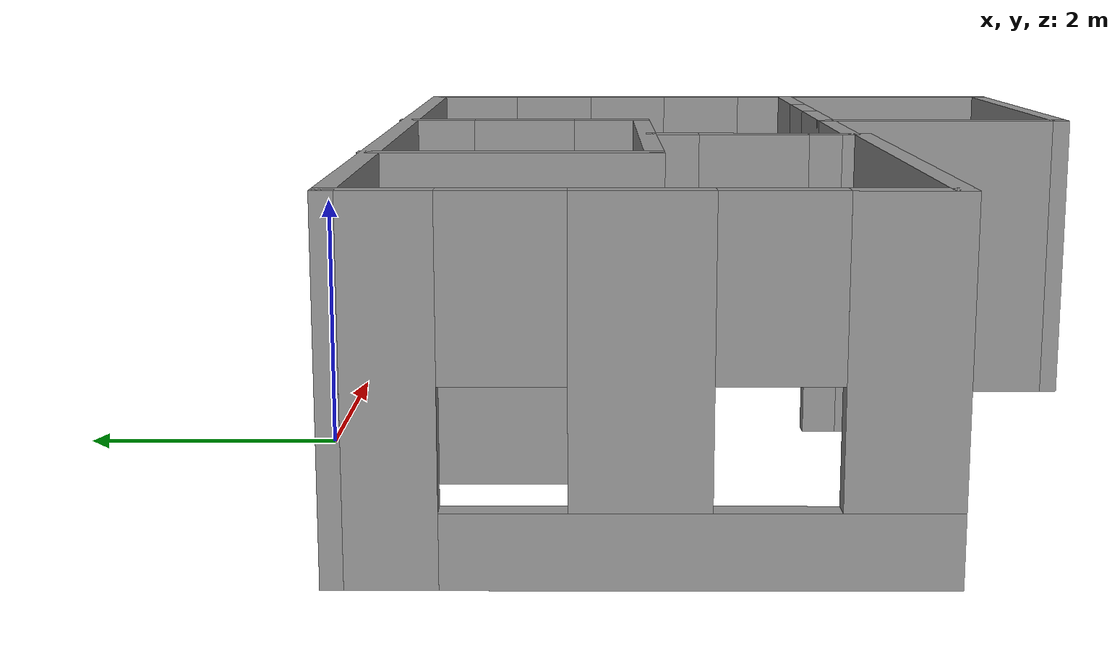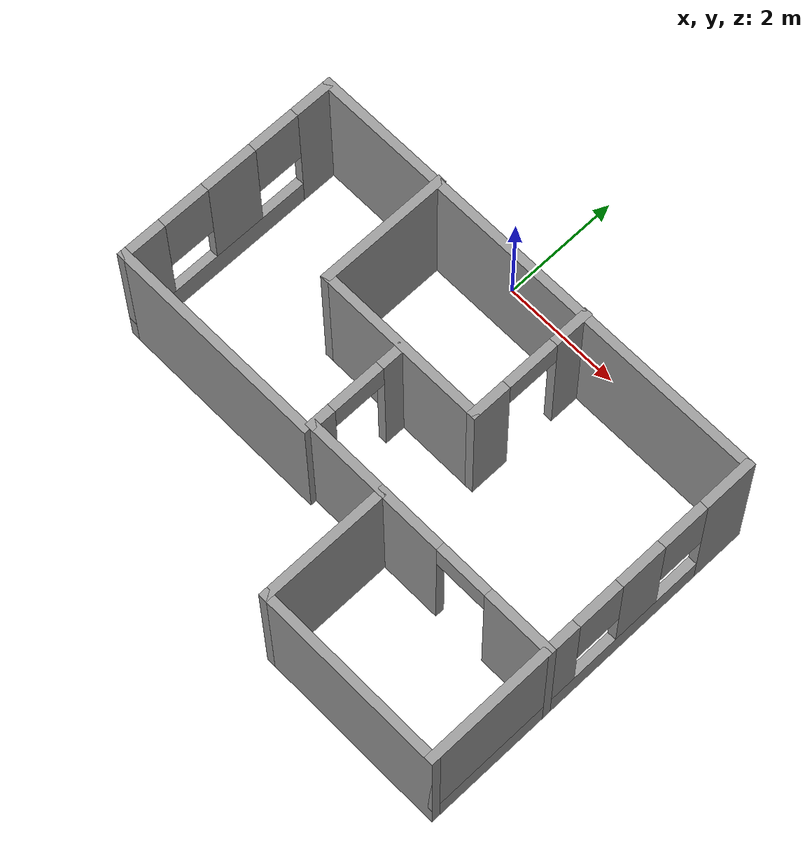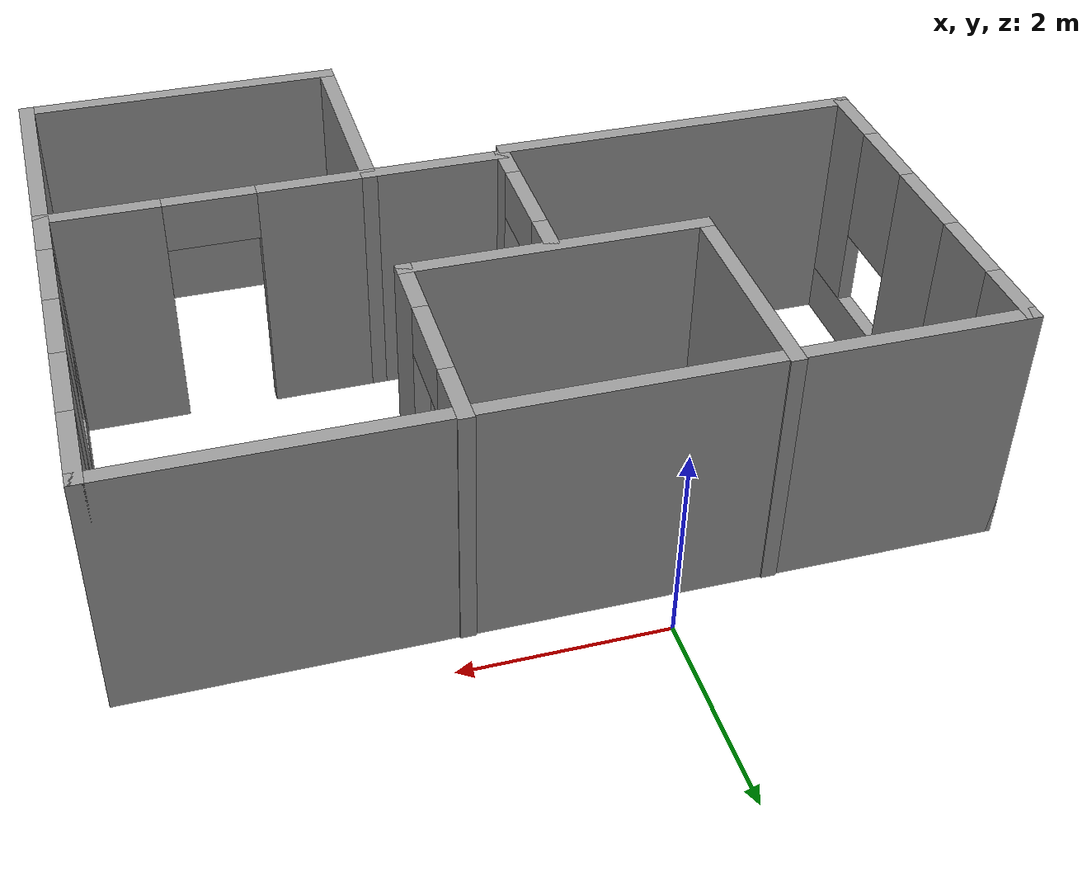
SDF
<?xml version='1.0'?>
<sdf version='1.7'>
  <model name='dd_world'>
    <pose>0.791013 -3.20142 0 0 -0 0</pose>
    <link name='Wall_0'>
      <collision name='Wall_0_Collision'>
        <geometry>
          <box>
            <size>8.25 0.15 2.5</size>
          </box>
        </geometry>
        <pose>0 0 1.25 0 -0 0</pose>
      </collision>
      <visual name='Wall_0_Visual'>
        <pose>0 0 1.25 0 -0 0</pose>
        <geometry>
          <box>
            <size>8.25 0.15 2.5</size>
          </box>
        </geometry>
        <material>
          <script>
            <uri>file://media/materials/scripts/gazebo.material</uri>
            <name>Gazebo/Grey</name>
          </script>
          <ambient>1 1 1 1</ambient>
        </material>
        <meta>
          <layer>0</layer>
        </meta>
      </visual>
      <pose>-0 2.72358 0 0 -0 0</pose>
    </link>
    <link name='Wall_1'>
      <pose>4.05 -0.201418 0 0 -0 -1.5708</pose>
      <visual name='Wall_1_Visual_0'>
        <pose>-2.5416 0 1.25 0 -0 0</pose>
        <geometry>
          <box>
            <size>0.916794 0.15 2.5</size>
          </box>
        </geometry>
        <material>
          <script>
            <uri>file://media/materials/scripts/gazebo.material</uri>
            <name>Gazebo/Grey</name>
          </script>
          <ambient>1 1 1 1</ambient>
        </material>
        <meta>
          <layer>0</layer>
        </meta>
      </visual>
      <collision name='Wall_1_Collision_0'>
        <geometry>
          <box>
            <size>0.916794 0.15 2.5</size>
          </box>
        </geometry>
        <pose>-2.5416 0 1.25 0 -0 0</pose>
      </collision>
      <visual name='Wall_1_Visual_1'>
        <pose>0.458397 0 0.25 0 -0 0</pose>
        <geometry>
          <box>
            <size>5.08321 0.15 0.5</size>
          </box>
        </geometry>
        <material>
          <script>
            <uri>file://media/materials/scripts/gazebo.material</uri>
            <name>Gazebo/Grey</name>
          </script>
          <ambient>1 1 1 1</ambient>
        </material>
        <meta>
          <layer>0</layer>
        </meta>
      </visual>
      <collision name='Wall_1_Collision_1'>
        <geometry>
          <box>
            <size>5.08321 0.15 0.5</size>
          </box>
        </geometry>
        <pose>0.458397 0 0.25 0 -0 0</pose>
      </collision>
      <visual name='Wall_1_Visual_2'>
        <pose>-0.887408 0 1.5 0 -0 0</pose>
        <geometry>
          <box>
            <size>0.791596 0.15 2</size>
          </box>
        </geometry>
        <material>
          <script>
            <uri>file://media/materials/scripts/gazebo.material</uri>
            <name>Gazebo/Grey</name>
          </script>
          <ambient>1 1 1 1</ambient>
        </material>
        <meta>
          <layer>0</layer>
        </meta>
      </visual>
      <collision name='Wall_1_Collision_2'>
        <geometry>
          <box>
            <size>0.791596 0.15 2</size>
          </box>
        </geometry>
        <pose>-0.887408 0 1.5 0 -0 0</pose>
      </collision>
      <visual name='Wall_1_Visual_3'>
        <pose>1.6542 0 1.5 0 -0 0</pose>
        <geometry>
          <box>
            <size>2.69161 0.15 2</size>
          </box>
        </geometry>
        <material>
          <script>
            <uri>file://media/materials/scripts/gazebo.material</uri>
            <name>Gazebo/Grey</name>
          </script>
          <ambient>1 1 1 1</ambient>
        </material>
        <meta>
          <layer>0</layer>
        </meta>
      </visual>
      <collision name='Wall_1_Collision_3'>
        <geometry>
          <box>
            <size>2.69161 0.15 2</size>
          </box>
        </geometry>
        <pose>1.6542 0 1.5 0 -0 0</pose>
      </collision>
      <visual name='Wall_1_Visual_4'>
        <pose>-1.68321 0 1.9 0 -0 0</pose>
        <geometry>
          <box>
            <size>0.8 0.15 1.2</size>
          </box>
        </geometry>
        <material>
          <script>
            <uri>file://media/materials/scripts/gazebo.material</uri>
            <name>Gazebo/Grey</name>
          </script>
          <ambient>1 1 1 1</ambient>
        </material>
        <meta>
          <layer>0</layer>
        </meta>
      </visual>
      <collision name='Wall_1_Collision_4'>
        <geometry>
          <box>
            <size>0.8 0.15 1.2</size>
          </box>
        </geometry>
        <pose>-1.68321 0 1.9 0 -0 0</pose>
      </collision>
      <visual name='Wall_1_Visual_5'>
        <pose>-0.09161 0 1.9 0 -0 0</pose>
        <geometry>
          <box>
            <size>0.8 0.15 1.2</size>
          </box>
        </geometry>
        <material>
          <script>
            <uri>file://media/materials/scripts/gazebo.material</uri>
            <name>Gazebo/Grey</name>
          </script>
          <ambient>1 1 1 1</ambient>
        </material>
        <meta>
          <layer>0</layer>
        </meta>
      </visual>
      <collision name='Wall_1_Collision_5'>
        <geometry>
          <box>
            <size>0.8 0.15 1.2</size>
          </box>
        </geometry>
        <pose>-0.09161 0 1.9 0 -0 0</pose>
      </collision>
    </link>
    <link name='Wall_11'>
      <collision name='Wall_11_Collision'>
        <geometry>
          <box>
            <size>1.5 0.15 2.5</size>
          </box>
        </geometry>
        <pose>0 0 1.25 0 -0 0</pose>
      </collision>
      <visual name='Wall_11_Visual'>
        <pose>0 0 1.25 0 -0 0</pose>
        <geometry>
          <box>
            <size>1.5 0.15 2.5</size>
          </box>
        </geometry>
        <material>
          <script>
            <uri>file://media/materials/scripts/gazebo.material</uri>
            <name>Gazebo/Grey</name>
          </script>
          <ambient>1 1 1 1</ambient>
        </material>
        <meta>
          <layer>0</layer>
        </meta>
      </visual>
      <pose>0.275 -1.02642 0 0 -0 3.14159</pose>
    </link>
    <link name='Wall_12'>
      <pose>-0.4 -0.226418 0 0 -0 1.5708</pose>
      <visual name='Wall_12_Visual_0'>
        <pose>-0.66541 0 1.25 0 -0 0</pose>
        <geometry>
          <box>
            <size>0.419179 0.15 2.5</size>
          </box>
        </geometry>
        <material>
          <script>
            <uri>file://media/materials/scripts/gazebo.material</uri>
            <name>Gazebo/Grey</name>
          </script>
          <ambient>1 1 1 1</ambient>
        </material>
        <meta>
          <layer>0</layer>
        </meta>
      </visual>
      <collision name='Wall_12_Collision_0'>
        <geometry>
          <box>
            <size>0.419179 0.15 2.5</size>
          </box>
        </geometry>
        <pose>-0.66541 0 1.25 0 -0 0</pose>
      </collision>
      <visual name='Wall_12_Visual_1'>
        <pose>0.65959 0 1.25 0 -0 0</pose>
        <geometry>
          <box>
            <size>0.430821 0.15 2.5</size>
          </box>
        </geometry>
        <material>
          <script>
            <uri>file://media/materials/scripts/gazebo.material</uri>
            <name>Gazebo/Grey</name>
          </script>
          <ambient>1 1 1 1</ambient>
        </material>
        <meta>
          <layer>0</layer>
        </meta>
      </visual>
      <collision name='Wall_12_Collision_1'>
        <geometry>
          <box>
            <size>0.430821 0.15 2.5</size>
          </box>
        </geometry>
        <pose>0.65959 0 1.25 0 -0 0</pose>
      </collision>
      <visual name='Wall_12_Visual_2'>
        <pose>-0.005821 0 2.25 0 -0 0</pose>
        <geometry>
          <box>
            <size>0.9 0.15 0.5</size>
          </box>
        </geometry>
        <material>
          <script>
            <uri>file://media/materials/scripts/gazebo.material</uri>
            <name>Gazebo/Grey</name>
          </script>
          <ambient>1 1 1 1</ambient>
        </material>
        <meta>
          <layer>0</layer>
        </meta>
      </visual>
      <collision name='Wall_12_Collision_2'>
        <geometry>
          <box>
            <size>0.9 0.15 0.5</size>
          </box>
        </geometry>
        <pose>-0.005821 0 2.25 0 -0 0</pose>
      </collision>
    </link>
    <link name='Wall_14'>
      <pose>-4.05 0.798582 0 0 -0 -1.5708</pose>
      <visual name='Wall_14_Visual_0'>
        <pose>-1.62905 0 1.25 0 -0 0</pose>
        <geometry>
          <box>
            <size>0.741894 0.15 2.5</size>
          </box>
        </geometry>
        <material>
          <script>
            <uri>file://media/materials/scripts/gazebo.material</uri>
            <name>Gazebo/Grey</name>
          </script>
          <ambient>1 1 1 1</ambient>
        </material>
        <meta>
          <layer>0</layer>
        </meta>
      </visual>
      <collision name='Wall_14_Collision_0'>
        <geometry>
          <box>
            <size>0.741894 0.15 2.5</size>
          </box>
        </geometry>
        <pose>-1.62905 0 1.25 0 -0 0</pose>
      </collision>
      <visual name='Wall_14_Visual_1'>
        <pose>0.370947 0 0.25 0 -0 0</pose>
        <geometry>
          <box>
            <size>3.25811 0.15 0.5</size>
          </box>
        </geometry>
        <material>
          <script>
            <uri>file://media/materials/scripts/gazebo.material</uri>
            <name>Gazebo/Grey</name>
          </script>
          <ambient>1 1 1 1</ambient>
        </material>
        <meta>
          <layer>0</layer>
        </meta>
      </visual>
      <collision name='Wall_14_Collision_1'>
        <geometry>
          <box>
            <size>3.25811 0.15 0.5</size>
          </box>
        </geometry>
        <pose>0.370947 0 0.25 0 -0 0</pose>
      </collision>
      <visual name='Wall_14_Visual_2'>
        <pose>-0.009838 0 1.5 0 -0 0</pose>
        <geometry>
          <box>
            <size>0.896536 0.15 2</size>
          </box>
        </geometry>
        <material>
          <script>
            <uri>file://media/materials/scripts/gazebo.material</uri>
            <name>Gazebo/Grey</name>
          </script>
          <ambient>1 1 1 1</ambient>
        </material>
        <meta>
          <layer>0</layer>
        </meta>
      </visual>
      <collision name='Wall_14_Collision_2'>
        <geometry>
          <box>
            <size>0.896536 0.15 2</size>
          </box>
        </geometry>
        <pose>-0.009838 0 1.5 0 -0 0</pose>
      </collision>
      <visual name='Wall_14_Visual_3'>
        <pose>1.61922 0 1.5 0 -0 0</pose>
        <geometry>
          <box>
            <size>0.76157 0.15 2</size>
          </box>
        </geometry>
        <material>
          <script>
            <uri>file://media/materials/scripts/gazebo.material</uri>
            <name>Gazebo/Grey</name>
          </script>
          <ambient>1 1 1 1</ambient>
        </material>
        <meta>
          <layer>0</layer>
        </meta>
      </visual>
      <collision name='Wall_14_Collision_3'>
        <geometry>
          <box>
            <size>0.76157 0.15 2</size>
          </box>
        </geometry>
        <pose>1.61922 0 1.5 0 -0 0</pose>
      </collision>
      <visual name='Wall_14_Visual_4'>
        <pose>-0.858106 0 1.9 0 -0 0</pose>
        <geometry>
          <box>
            <size>0.8 0.15 1.2</size>
          </box>
        </geometry>
        <material>
          <script>
            <uri>file://media/materials/scripts/gazebo.material</uri>
            <name>Gazebo/Grey</name>
          </script>
          <ambient>1 1 1 1</ambient>
        </material>
        <meta>
          <layer>0</layer>
        </meta>
      </visual>
      <collision name='Wall_14_Collision_4'>
        <geometry>
          <box>
            <size>0.8 0.15 1.2</size>
          </box>
        </geometry>
        <pose>-0.858106 0 1.9 0 -0 0</pose>
      </collision>
      <visual name='Wall_14_Visual_5'>
        <pose>0.83843 0 1.9 0 -0 0</pose>
        <geometry>
          <box>
            <size>0.8 0.15 1.2</size>
          </box>
        </geometry>
        <material>
          <script>
            <uri>file://media/materials/scripts/gazebo.material</uri>
            <name>Gazebo/Grey</name>
          </script>
          <ambient>1 1 1 1</ambient>
        </material>
        <meta>
          <layer>0</layer>
        </meta>
      </visual>
      <collision name='Wall_14_Collision_5'>
        <geometry>
          <box>
            <size>0.8 0.15 1.2</size>
          </box>
        </geometry>
        <pose>0.83843 0 1.9 0 -0 0</pose>
      </collision>
    </link>
    <link name='Wall_15'>
      <collision name='Wall_15_Collision'>
        <geometry>
          <box>
            <size>3.75 0.15 2.5</size>
          </box>
        </geometry>
        <pose>0 0 1.25 0 -0 0</pose>
      </collision>
      <visual name='Wall_15_Visual'>
        <pose>0 0 1.25 0 -0 0</pose>
        <geometry>
          <box>
            <size>3.75 0.15 2.5</size>
          </box>
        </geometry>
        <material>
          <script>
            <uri>file://media/materials/scripts/gazebo.material</uri>
            <name>Gazebo/Grey</name>
          </script>
          <ambient>1 1 1 1</ambient>
        </material>
        <meta>
          <layer>0</layer>
        </meta>
      </visual>
      <pose>-2.25 -1.12642 0 0 -0 0</pose>
    </link>
    <link name='Wall_3'>
      <collision name='Wall_3_Collision'>
        <geometry>
          <box>
            <size>3.25 0.15 2.5</size>
          </box>
        </geometry>
        <pose>0 0 1.25 0 -0 0</pose>
      </collision>
      <visual name='Wall_3_Visual'>
        <pose>0 0 1.25 0 -0 0</pose>
        <geometry>
          <box>
            <size>3.25 0.15 2.5</size>
          </box>
        </geometry>
        <material>
          <script>
            <uri>file://media/materials/scripts/gazebo.material</uri>
            <name>Gazebo/Grey</name>
          </script>
          <ambient>1 1 1 1</ambient>
        </material>
        <meta>
          <layer>0</layer>
        </meta>
      </visual>
      <pose>2.5 -3.12642 0 0 -0 3.14159</pose>
    </link>
    <link name='Wall_4'>
      <collision name='Wall_4_Collision'>
        <geometry>
          <box>
            <size>2.25 0.15 2.5</size>
          </box>
        </geometry>
        <pose>0 0 1.25 0 -0 0</pose>
      </collision>
      <visual name='Wall_4_Visual'>
        <pose>0 0 1.25 0 -0 0</pose>
        <geometry>
          <box>
            <size>2.25 0.15 2.5</size>
          </box>
        </geometry>
        <material>
          <script>
            <uri>file://media/materials/scripts/gazebo.material</uri>
            <name>Gazebo/Grey</name>
          </script>
          <ambient>1 1 1 1</ambient>
        </material>
        <meta>
          <layer>0</layer>
        </meta>
      </visual>
      <pose>0.95 -2.07642 0 0 -0 1.5708</pose>
    </link>
    <link name='Wall_5'>
      <pose>2.5 -1.02642 0 0 -0 0</pose>
      <visual name='Wall_5_Visual_0'>
        <pose>-1.04186 0 1.25 0 -0 0</pose>
        <geometry>
          <box>
            <size>1.16628 0.15 2.5</size>
          </box>
        </geometry>
        <material>
          <script>
            <uri>file://media/materials/scripts/gazebo.material</uri>
            <name>Gazebo/Grey</name>
          </script>
          <ambient>1 1 1 1</ambient>
        </material>
        <meta>
          <layer>0</layer>
        </meta>
      </visual>
      <collision name='Wall_5_Collision_0'>
        <geometry>
          <box>
            <size>1.16628 0.15 2.5</size>
          </box>
        </geometry>
        <pose>-1.04186 0 1.25 0 -0 0</pose>
      </collision>
      <visual name='Wall_5_Visual_1'>
        <pose>1.03314 0 1.25 0 -0 0</pose>
        <geometry>
          <box>
            <size>1.18372 0.15 2.5</size>
          </box>
        </geometry>
        <material>
          <script>
            <uri>file://media/materials/scripts/gazebo.material</uri>
            <name>Gazebo/Grey</name>
          </script>
          <ambient>1 1 1 1</ambient>
        </material>
        <meta>
          <layer>0</layer>
        </meta>
      </visual>
      <collision name='Wall_5_Collision_1'>
        <geometry>
          <box>
            <size>1.18372 0.15 2.5</size>
          </box>
        </geometry>
        <pose>1.03314 0 1.25 0 -0 0</pose>
      </collision>
      <visual name='Wall_5_Visual_2'>
        <pose>-0.008717 0 2.25 0 -0 0</pose>
        <geometry>
          <box>
            <size>0.9 0.15 0.5</size>
          </box>
        </geometry>
        <material>
          <script>
            <uri>file://media/materials/scripts/gazebo.material</uri>
            <name>Gazebo/Grey</name>
          </script>
          <ambient>1 1 1 1</ambient>
        </material>
        <meta>
          <layer>0</layer>
        </meta>
      </visual>
      <collision name='Wall_5_Collision_2'>
        <geometry>
          <box>
            <size>0.9 0.15 0.5</size>
          </box>
        </geometry>
        <pose>-0.008717 0 2.25 0 -0 0</pose>
      </collision>
    </link>
    <link name='Wall_7'>
      <collision name='Wall_7_Collision'>
        <geometry>
          <box>
            <size>2.25 0.15 2.5</size>
          </box>
        </geometry>
        <pose>0 0 1.25 0 -0 0</pose>
      </collision>
      <visual name='Wall_7_Visual'>
        <pose>0 0 1.25 0 -0 0</pose>
        <geometry>
          <box>
            <size>2.25 0.15 2.5</size>
          </box>
        </geometry>
        <material>
          <script>
            <uri>file://media/materials/scripts/gazebo.material</uri>
            <name>Gazebo/Grey</name>
          </script>
          <ambient>1 1 1 1</ambient>
        </material>
        <meta>
          <layer>0</layer>
        </meta>
      </visual>
      <pose>-1.86374 1.69107 0 0 -0 -1.5708</pose>
    </link>
    <link name='Wall_8'>
      <collision name='Wall_8_Collision'>
        <geometry>
          <box>
            <size>3 0.15 2.5</size>
          </box>
        </geometry>
        <pose>0 0 1.25 0 -0 0</pose>
      </collision>
      <visual name='Wall_8_Visual'>
        <pose>0 0 1.25 0 -0 0</pose>
        <geometry>
          <box>
            <size>3 0.15 2.5</size>
          </box>
        </geometry>
        <material>
          <script>
            <uri>file://media/materials/scripts/gazebo.material</uri>
            <name>Gazebo/Grey</name>
          </script>
          <ambient>1 1 1 1</ambient>
        </material>
        <meta>
          <layer>0</layer>
        </meta>
      </visual>
      <pose>-0.438742 0.641072 0 0 -0 0</pose>
    </link>
    <link name='Wall_9'>
      <pose>0.986258 1.69107 0 0 -0 1.5708</pose>
      <visual name='Wall_9_Visual_0'>
        <pose>-0.787202 0 1.25 0 -0 0</pose>
        <geometry>
          <box>
            <size>0.675596 0.15 2.5</size>
          </box>
        </geometry>
        <material>
          <script>
            <uri>file://media/materials/scripts/gazebo.material</uri>
            <name>Gazebo/Grey</name>
          </script>
          <ambient>1 1 1 1</ambient>
        </material>
        <meta>
          <layer>0</layer>
        </meta>
      </visual>
      <collision name='Wall_9_Collision_0'>
        <geometry>
          <box>
            <size>0.675596 0.15 2.5</size>
          </box>
        </geometry>
        <pose>-0.787202 0 1.25 0 -0 0</pose>
      </collision>
      <visual name='Wall_9_Visual_1'>
        <pose>0.787798 0 1.25 0 -0 0</pose>
        <geometry>
          <box>
            <size>0.674404 0.15 2.5</size>
          </box>
        </geometry>
        <material>
          <script>
            <uri>file://media/materials/scripts/gazebo.material</uri>
            <name>Gazebo/Grey</name>
          </script>
          <ambient>1 1 1 1</ambient>
        </material>
        <meta>
          <layer>0</layer>
        </meta>
      </visual>
      <collision name='Wall_9_Collision_1'>
        <geometry>
          <box>
            <size>0.674404 0.15 2.5</size>
          </box>
        </geometry>
        <pose>0.787798 0 1.25 0 -0 0</pose>
      </collision>
      <visual name='Wall_9_Visual_2'>
        <pose>0.000596 0 2.25 0 -0 0</pose>
        <geometry>
          <box>
            <size>0.9 0.15 0.5</size>
          </box>
        </geometry>
        <material>
          <script>
            <uri>file://media/materials/scripts/gazebo.material</uri>
            <name>Gazebo/Grey</name>
          </script>
          <ambient>1 1 1 1</ambient>
        </material>
        <meta>
          <layer>0</layer>
        </meta>
      </visual>
      <collision name='Wall_9_Collision_2'>
        <geometry>
          <box>
            <size>0.9 0.15 0.5</size>
          </box>
        </geometry>
        <pose>0.000596 0 2.25 0 -0 0</pose>
      </collision>
    </link>
    <static>1</static>
  </model>
</sdf>
